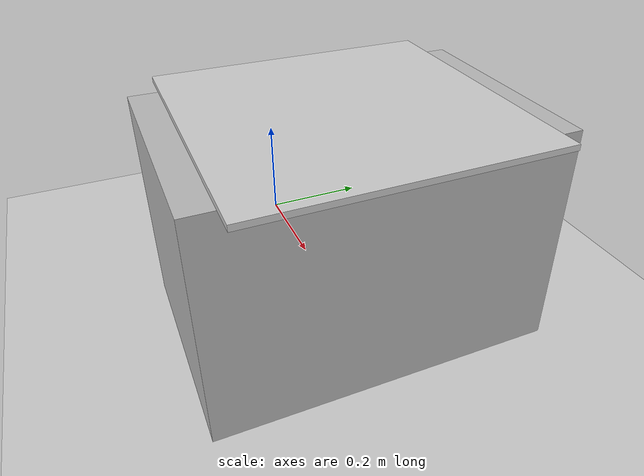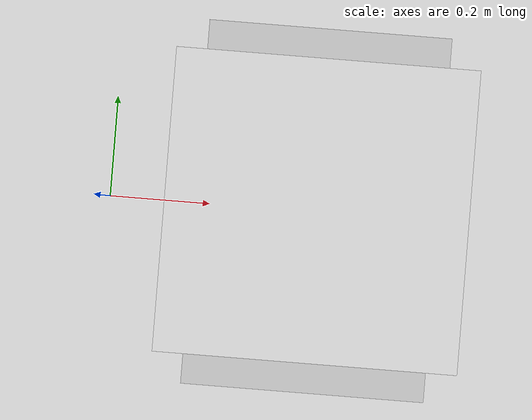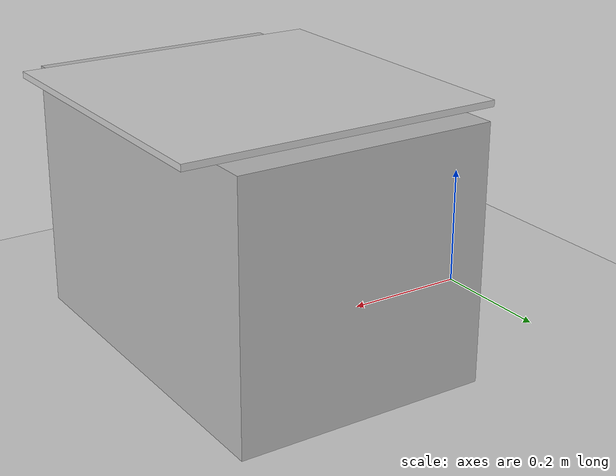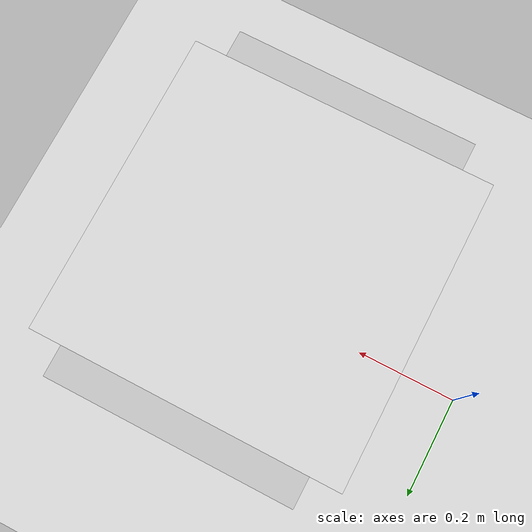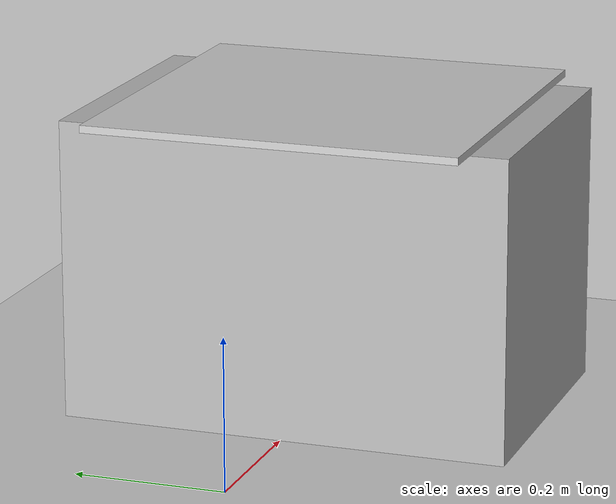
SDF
<?xml version="1.0" ?>
<sdf version="1.6">
  <world name="empty_with_soft_block_probe">
    <!-- 全局光源: 提供场景照明 -->
    <include>
      <uri>model://sun</uri>
    </include>

    <!-- 地面平面: 作为基础参考面 -->
    <include>
      <uri>model://ground_plane</uri>
    </include>

    <!-- 桌子模型: 支撑软块，尺寸约0.45x0.64x0.42米 -->
    <include>
      <uri>model://table</uri>
      <pose>0.4 0 0.0 0 -0 0</pose>
      <name>table</name>
      <static>1</static>
    </include>

    <!-- 软块模型: 用于测试力探头接触，位于桌面中心 -->
    <include>
      <uri>model://soft_block</uri>
      <!-- pose参数定义模型在世界中的位置和姿态: [x y z roll pitch yaw]
         当前值(0.4 0 0.405 0 0 0)将软块放在桌面上方
         z值0.405 = 桌面高度(0.4) + 软块厚度的一半(0.005)
         这样软块底部刚好与桌面接触，不会漂浮也不会重叠
      -->
      <pose>0.4 0 0.405 0 0 0</pose>
      <name>soft_block</name>
    </include>

    <!-- 定义桌子和软块之间的限制关节，允许垂直方向的微小位移但限制水平移动 -->
    <joint name="table_soft_block_joint" type="prismatic">
      <parent>table::link</parent>
      <child>soft_block::link</child>
      <!--
        相对位姿: 相对于父链接(桌子)的位置和姿态
        z = 0.2: 桌子高度的一半，使软块位于桌面上（桌子的中心是0.2，因此z轴要抬高0.2）
        其他值为0表示在桌面中心位置
      -->
      <pose>0 0 0.2 0 0 0</pose>
      <!-- 限制运动轴为垂直方向(z轴) -->
      <axis>
        <xyz>0 0 1</xyz>
        <limit>
          <!-- 允许向下压缩最多5mm，向上弹回最多2mm -->
          <lower>-0.005</lower>
          <upper>0.002</upper>
          <!-- 关节阻尼，模拟硅胶的粘弹性 -->
          <effort>10</effort>
          <velocity>0.01</velocity>
        </limit>
        <dynamics>
          <damping>10.0</damping>
          <friction>0.1</friction>
        </dynamics>
      </axis>
    </joint>

    <!-- 物理引擎设置: 针对软体仿真优化 -->
    <physics type="ode">
      <max_step_size>0.0005</max_step_size>    <!-- 减小时间步长，提高软体仿真精度 -->
      <real_time_factor>1</real_time_factor>
      <real_time_update_rate>2000</real_time_update_rate>  <!-- 增加更新频率以配合小时间步长 -->

      <!-- ODE特定参数: 针对软体接触优化 -->
      <ode>
        <solver>
          <type>quick</type>                   <!-- 使用迭代求解器，适合软体仿真 -->
          <iters>100</iters>                   <!-- 增加迭代次数，提高软体接触收敛性 -->
          <sor>1.3</sor>                       <!-- 超松弛参数，加速收敛 -->
        </solver>

        <constraints>
          <cfm>0.01</cfm>                      <!-- 约束力混合参数：降低以提高软体刚度 -->
          <erp>0.8</erp>                       <!-- 错误修正参数：提高以改善收敛 -->
          <contact_max_correcting_vel>10</contact_max_correcting_vel>  <!-- 增大允许的修正速度 -->
          <contact_surface_layer>0.002</contact_surface_layer>         <!-- 增加表面层厚度 -->
        </constraints>
      </ode>
    </physics>
  </world>
</sdf>

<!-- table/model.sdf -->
<sdf version='1.6'>
  <model name='table'>
    <link name='link'>
      <pose>0 0 0.2 0 -0 0</pose>
      <inertial>
        <!--
          惯性属性中心点，通常与几何中心一致
          设置为原点(0,0,0)表示惯性中心与链接坐标系原点重合
        -->
        <pose>0 0 0 0 -0 0</pose>
        <!-- 质量: 10kg，适合模拟稳定的桌子结构 -->
        <mass>10</mass>
        <inertia>
          <ixx>0.166667</ixx>  <!-- x轴转动惯性 -->
          <ixy>0</ixy>          <!-- xy平面耦合惯性 -->
          <ixz>0</ixz>          <!-- xz平面耦合惯性 -->
          <iyy>0.166667</iyy>   <!-- y轴转动惯性 -->
          <iyz>0</iyz>          <!-- yz平面耦合惯性 -->
          <izz>0.166667</izz>   <!-- z轴转动惯性 -->
        </inertia>
      </inertial>
      <!-- 禁用自碰撞检测: 0表示链接内部不进行碰撞检测 -->
      <self_collide>0</self_collide>
      <!-- 禁用风力效果: 桌子不受风力影响 -->
      <enable_wind>0</enable_wind>
      <!-- 非运动学模式: 0表示受物理引擎控制，而非纯运动学 -->
      <kinematic>0</kinematic>
      <visual name='visual'>
        <!-- 视觉元素位姿: 相对于链接坐标系 -->
        <pose>0 0 0 0 -0 0</pose>
        <geometry>
          <box>
            <size>0.4 0.6 0.4</size>
          </box>
        </geometry>
        <!--
          材质属性: 定义桌面外观
          使用Gazebo内置的灰色材质
        -->
        <material>
          <script>
            <!-- Gazebo标准材质：灰色 -->
            <n>Gazebo/Grey</n>
            <!-- 材质脚本路径 -->
            <uri>file://media/materials/scripts/gazebo.material</uri>
          </script>
          <!-- 像素着色器: 使用标准着色模型 -->
          <shader type='pixel'/>
        </material>
        <!-- 视觉元素位姿: 与链接原点对齐 -->
        <pose>0 0 0 0 -0 0</pose>
        <!-- 透明度: 0表示完全不透明 -->
        <transparency>0</transparency>
        <!-- 投射阴影: 1表示启用阴影投射 -->
        <cast_shadows>1</cast_shadows>
      </visual>
      <collision name='collision'>
        <!-- 激光反射率: 对激光传感器的反射强度 -->
        <laser_retro>0</laser_retro>
        <!-- 最大接触点数: 影响碰撞计算精度 -->
        <max_contacts>10</max_contacts>
        <!-- 碰撞几何体位姿: 与链接原点对齐 -->
        <pose>0 0 0 0 -0 0</pose>
        <!-- 碰撞几何体: 与视觉几何体尺寸一致的长方体 -->
        <geometry>
          <box>
            <size>0.4 0.6 0.4</size>
          </box>
        </geometry>
        <surface>
          <!-- 摩擦特性: 控制探头与桌面接触时的滑动行为 -->
          <friction>
            <ode>
              <!--
                摩擦系数: 1.0，较高摩擦力
                适合模拟桌面材质，防止物体轻易滑落
              -->
              <mu>1</mu>
              <mu2>1</mu2>
              <!-- 主摩擦方向: 使用默认方向 -->
              <fdir1>0 0 0</fdir1>
              <!-- 无滑移: 0表示不允许微小滑动 -->
              <slip1>0</slip1>
              <slip2>0</slip2>
            </ode>
            <!-- 扭转摩擦: 控制物体旋转时的摩擦 -->
            <torsional>
              <!-- 扭转摩擦系数: 1表示较高扭转阻力 -->
              <coefficient>1</coefficient>
              <patch_radius>0</patch_radius>
              <surface_radius>0</surface_radius>
              <!-- 使用接触面积计算: 1表示启用 -->
              <use_patch_radius>1</use_patch_radius>
              <ode>
                <!-- 扭转滑移: 0表示不允许扭转滑动 -->
                <slip>0</slip>
              </ode>
            </torsional>
          </friction>
          <!-- 反弹特性: 控制物体碰撞后的弹性行为 -->
          <bounce>
            <!-- 恢复系数: 0表示完全不反弹 -->
            <restitution_coefficient>0</restitution_coefficient>
            <!-- 反弹阈值: 大于此值的碰撞速度才计算反弹 -->
            <threshold>1e+06</threshold>
          </bounce>
          <!-- 接触特性: 精细控制物理接触行为 -->
          <contact>
            <!-- 非接触碰撞: 0表示禁用非接触碰撞响应 -->
            <collide_without_contact>0</collide_without_contact>
            <collide_without_contact_bitmask>1</collide_without_contact_bitmask>
            <!-- 碰撞掩码: 用于选择性碰撞检测 -->
            <collide_bitmask>1</collide_bitmask>
            <!-- ODE物理引擎接触参数 -->
            <ode>
              <!--
                接触软度: 控制接触面弹性
                0表示刚性接触，适合模拟硬桌面
              -->
              <soft_cfm>0</soft_cfm>
              <!-- 错误减小率: 控制接触误差修正速度 -->
              <soft_erp>0.2</soft_erp>
              <!--
                接触刚度系数: 1e+13表示非常硬的表面
                比软块(1,000,000)高得多，模拟坚硬桌面
              -->
              <kp>1e+13</kp>
              <!-- 阻尼系数: 控制能量耗散率 -->
              <kd>1</kd>
              <!-- 最大接触速度: 限制接触计算中的最大速度 -->
              <max_vel>0.01</max_vel>
              <!-- 最小接触深度: 小于此值的接触被忽略 -->
              <min_depth>0</min_depth>
            </ode>
            <!-- Bullet物理引擎接触参数（备用引擎） -->
            <bullet>
              <!-- 脉冲分离: 使用分离脉冲算法提高稳定性 -->
              <split_impulse>1</split_impulse>
              <split_impulse_penetration_threshold>-0.01</split_impulse_penetration_threshold>
              <!-- Bullet引擎特有的接触参数 -->
              <soft_cfm>0</soft_cfm>
              <soft_erp>0.2</soft_erp>
              <kp>1e+13</kp>
              <kd>1</kd>
            </bullet>
          </contact>
        </surface>
      </collision>
    </link>
    <!--
      静态属性: 1表示桌子固定不移动
      设置为静态可提高仿真性能，适合不需要移动的物体
    -->
    <static>1</static>
    <!--
      允许自动禁用: 1表示当物体静止时可被物理引擎优化
      提高长时间仿真的计算效率
    -->
    <allow_auto_disable>1</allow_auto_disable>
  </model>
</sdf>

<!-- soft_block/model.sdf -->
<sdf version="1.6">
  <model name="soft_block">
    <!--
      静态属性：false表示软块可以运动/形变
      对于硅胶材质，需要允许适当的形变和位移
    -->
    <static>false</static>
    <!--
      模型位姿：相对于世界坐标系，格式: x y z roll pitch yaw
      此处设置的是模型默认位置，实际位置会在世界文件中被覆盖
    -->
    <pose>0.4 0 0.4005 0 0 0</pose>
    <link name="link">
      <inertial>
        <!-- 质量：0.5kg，适中的质量使其能模拟轻柔材料 -->
        <mass>0.5</mass>
        <inertia>
          <ixx>0.0104167</ixx>  <!-- x轴转动惯性 -->
          <ixy>0</ixy>           <!-- xy平面耦合惯性 -->
          <ixz>0</ixz>           <!-- xz平面耦合惯性 -->
          <iyy>0.0104167</iyy>   <!-- y轴转动惯性 -->
          <iyz>0</iyz>           <!-- yz平面耦合惯性 -->
          <izz>0.0208333</izz>   <!-- z轴转动惯性 -->
        </inertia>
      </inertial>
      <collision name="collision">
        <!-- 碰撞几何体：薄板形状 -->
        <geometry>
          <box>
            <!--
              尺寸：[长 宽 高]
              0.5 x 0.5 x 0.01米，将厚度改为1cm
              高度0.01米用于模拟薄的软表面
            -->
            <size>0.5 0.5 0.01</size>
          </box>
        </geometry>
        <surface>
          <!-- 物理参数 - 使用simulation_parameters_config.yaml中定义的值 -->
          <friction>
            <ode>
              <mu>0.0</mu>
              <mu2>0.0</mu2>
              <fdir1>0 0 1</fdir1>
              <slip1>0.0</slip1>
              <slip2>0.0</slip2>
            </ode>
          </friction>
          <contact>
            <ode>
              <min_depth>0.001</min_depth>        <!-- 增加最小深度，允许更深的穿透 -->
              <max_vel>0.1</max_vel>              <!-- 增大最大接触速度 -->
              <kp>100</kp>                        <!-- 大幅降低刚度系数，模拟极软材料 -->
              <kd>10</kd>                         <!-- 降低阻尼系数 -->
              <elastic_modulus>100.0</elastic_modulus>
              <poisson_ratio>0.45</poisson_ratio>
              <soft_cfm>0.1</soft_cfm>            <!-- 大幅增加软约束混合参数 -->
              <soft_erp>0.2</soft_erp>            <!-- 设置软错误修正参数 -->
            </ode>
          </contact>
        </surface>
      </collision>
      <visual name="visual">
        <!-- 视觉几何体：与碰撞几何体相同的薄板 -->
        <geometry>
          <box>
            <size>0.5 0.5 0.01</size>
          </box>
        </geometry>
        <!--
          材质属性：浅灰色外观
          使用RGB颜色值(0.8, 0.8, 0.8)表示浅灰色
        -->
        <material>
          <!-- 环境光反射率 -->
          <ambient>0.8 0.8 0.8 1</ambient>
          <!-- 漫反射率 -->
          <diffuse>0.8 0.8 0.8 1</diffuse>
          <!-- 镜面反射率 -->
          <specular>0.1 0.1 0.1 1</specular>
        </material>
      </visual>
    </link>
    <!--
      Gazebo特有属性：提供额外的物理和渲染参数
      这些参数可能会覆盖上面定义的一些值
    -->
    <gazebo>
      <!-- Gazebo标准材质：白色 -->
      <material>Gazebo/White</material>
      <!-- 摩擦系数设置为0，消除XY平面的摩擦力 -->
      <mu1>0.0</mu1>
      <mu2>0.0</mu2>
      <!--
        接触刚度系数：降低到100模拟极软硅胶特性
        这是关键参数，决定软块的可压缩性
      -->
      <kp>100</kp>
      <!-- 阻尼系数：降低到10，与ODE设置保持一致 -->
      <kd>10</kd>
      <!-- 最小接触深度：增加到0.001，允许更深的压缩 -->
      <minDepth>0.001</minDepth>
      <!-- 最大接触速度：增加到0.1，允许更快的形变 -->
      <maxVel>0.1</maxVel>
      <!-- 自碰撞：禁用模型内部的碰撞检测 -->
      <selfCollide>0</selfCollide>
      <!-- 激光回波强度：对激光传感器的反射强度 -->
      <laserRetro>0</laserRetro>
      <!-- 添加弹性模量参数，与软接触模型参数精确匹配 -->
      <elastic_modulus>100.0</elastic_modulus>
      <!-- 泊松比：根据论文中的材料特性 -->
      <poisson_ratio>0.45</poisson_ratio>
      <!-- 大幅增加软约束混合参数，使接触极其柔和 -->
      <soft_cfm>0.1</soft_cfm>
      <!-- 设置软错误修正参数，降低收敛要求 -->
      <soft_erp>0.2</soft_erp>
    </gazebo>
  </model>
</sdf>
